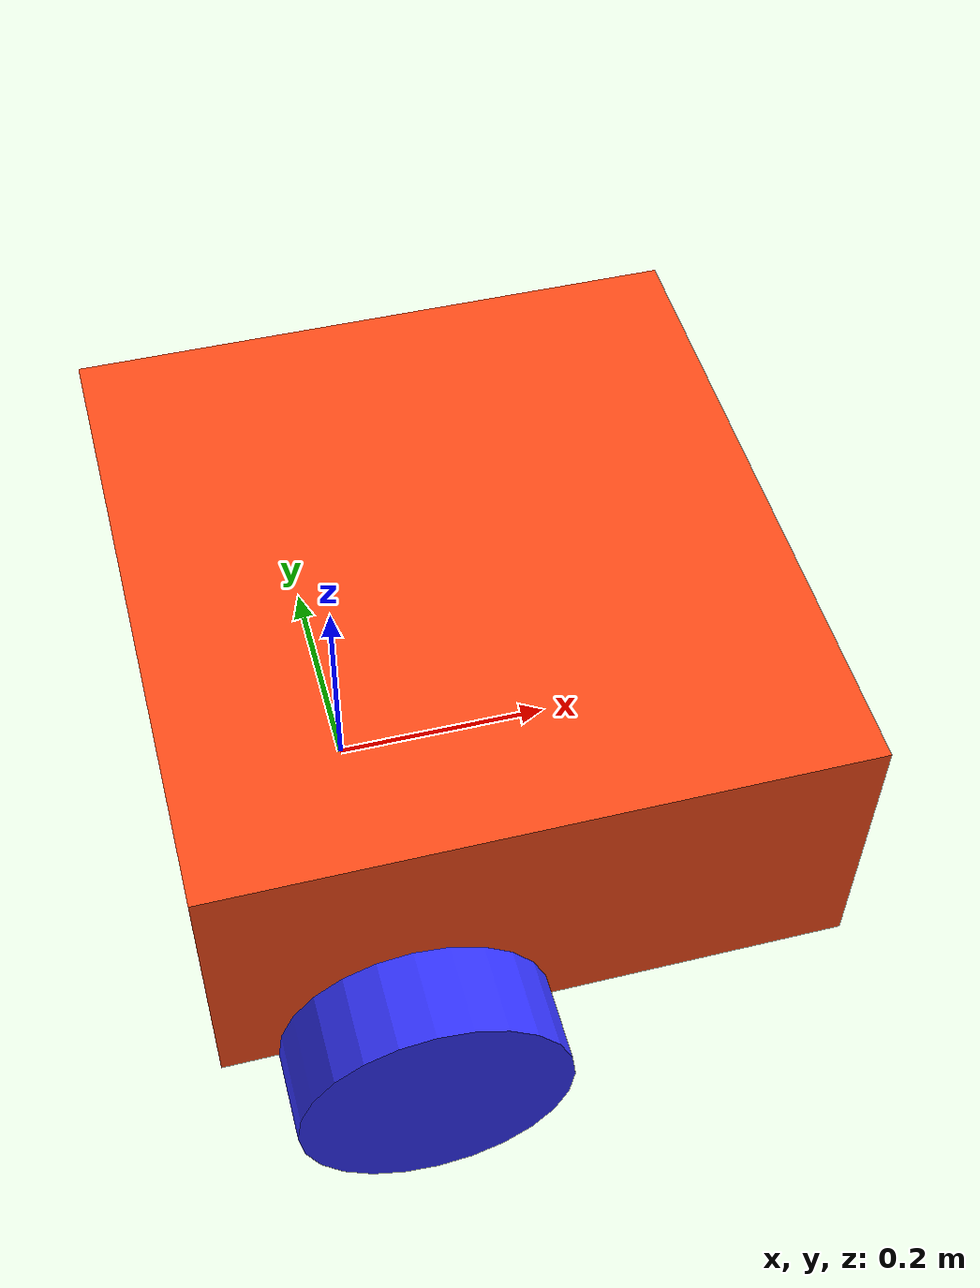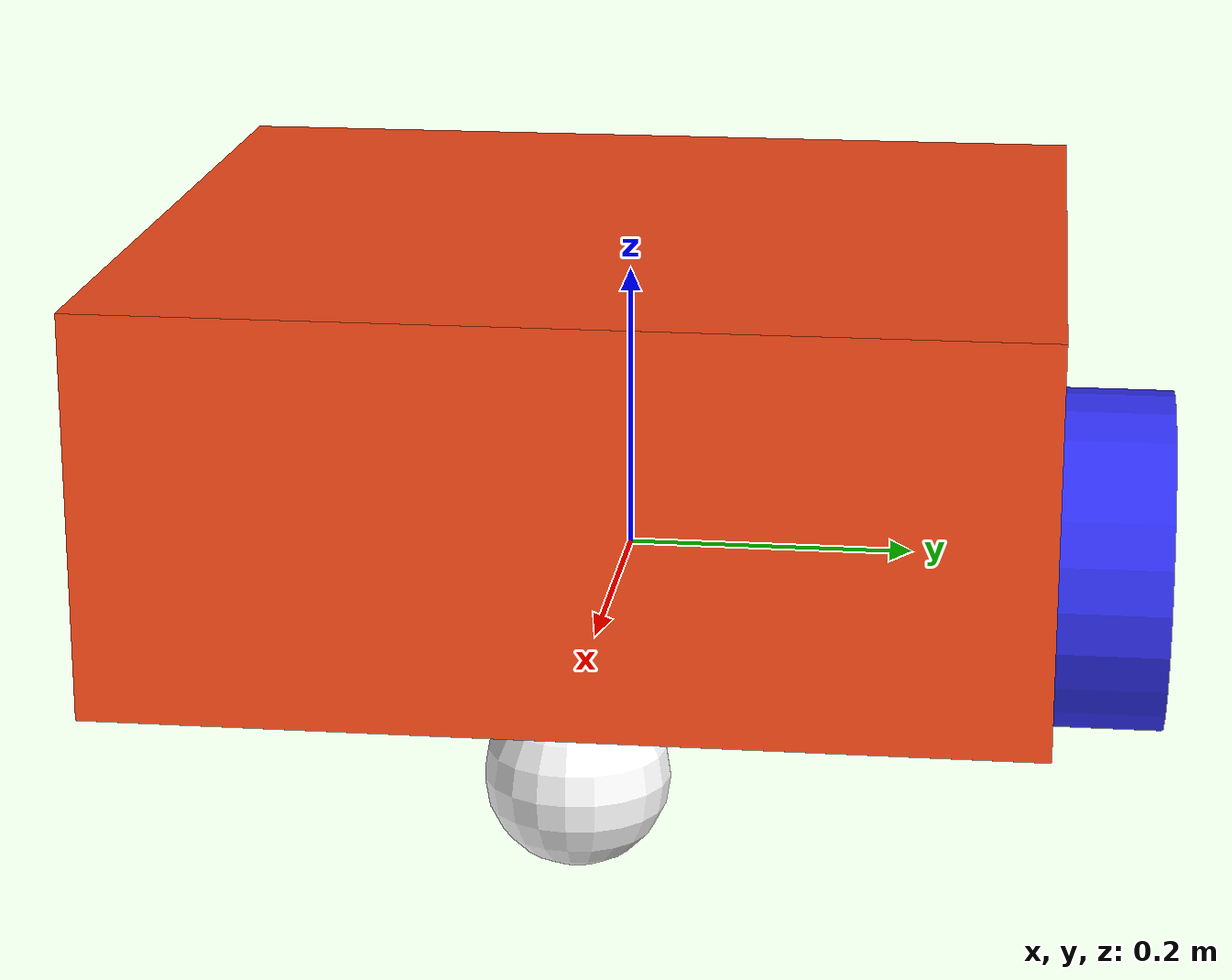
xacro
<?xml version="1.0"?>
<robot xmlns:xacro="http://www.ros.org/wiki/xacro"  name="robot">
<!-- This file has all the components of the body listed.  -->

    <xacro:include filename="robot_core.xacro" />
    <xacro:include filename="ros2_control.xacro" />
    <xacro:include filename="lidar.xacro" />

</robot>

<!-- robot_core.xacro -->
<robot xmlns:xacro="http://www.ros.org/wiki/xacro">
<!-- This will contain the core structure defined.  -->

    <xacro:include filename="inertial_macros.xacro"/>
    <xacro:include filename="properties.xacro"/>
    <xacro:include filename="material.xacro"/>

    <link name="base_link"></link>

    <link name="base_footprint"></link>

    <!-- BASE_FOOTPRINT LINK -->
    <joint name="base_footprint_joint" type="fixed">
        <parent link="base_link"/>
        <child link="base_footprint"/>
        <origin xyz="0 0 0"/>
    </joint>

    <!-- CHASSIS LINK -->
    <joint name="chassis_joint" type="fixed">
        <parent link="base_link"/>
        <child link="chassis"/>
        <origin xyz="${-wheel_offset_x} 0 0"/>
    </joint>

    <link name="chassis">
        <visual>
            <origin xyz="${chassis_length/2} 0 ${chassis_height/2}"/>
            <geometry>
                <box size="${chassis_length} ${chassis_width} ${chassis_height}"/>
            </geometry>
            <material name="orange"/>
        </visual>
        <collision>
            <origin xyz="${chassis_length/2} 0 ${chassis_height/2}"/>
            <geometry>
                <box size="${chassis_length} ${chassis_width} ${chassis_height}"/>
            </geometry>
        </collision>
        <xacro:inertial_box mass="0.5" x="${chassis_length}" y="${chassis_width}" z="${chassis_height}">
            <origin xyz="${chassis_length/2} 0 ${chassis_height/2}" rpy="0 0 0"/>
        </xacro:inertial_box>
    </link>

 <!-- RIGHT WHEEL LINK -->
    <joint name="right_wheel_joint" type="continuous">
        <parent link="base_link"/>
        <child link="right_wheel"/>
        <origin xyz="0 ${-wheel_offset_y} 0" rpy="${pi/2} 0 0" />
        <axis xyz="0 0 -1"/>
    </joint>

    <link name="right_wheel">
        <visual>
            <geometry>
                <cylinder radius="${wheel_radius}" length="${wheel_thickness}"/>
            </geometry>
            <material name="blue"/>
        </visual>
        <collision>
            <geometry>
                <sphere radius="${wheel_radius}"/>
            </geometry>
        </collision>
        <xacro:inertial_cylinder mass="${wheel_mass}" length="${wheel_thickness}" radius="${wheel_radius}">
            <origin xyz="0 0 0" rpy="0 0 0"/>
        </xacro:inertial_cylinder>
    </link>

    <!-- LEFT WHEEL LINK -->
    <joint name="left_wheel_joint" type="continuous">
        <parent link="base_link"/>
        <child link="left_wheel"/>
        <origin xyz="0 ${wheel_offset_y} 0" rpy="-${pi/2} 0 0" />
        <axis xyz="0 0 1"/>
    </joint>

    <link name="left_wheel">
        <visual>
            <geometry>
                <cylinder radius="${wheel_radius}" length="${wheel_thickness}"/>
            </geometry>
            <material name="blue"/>
        </visual>
        <collision>
            <geometry>
                <sphere radius="${wheel_radius}"/>
            </geometry>
        </collision>
        <xacro:inertial_cylinder mass="${wheel_mass}" length="${wheel_thickness}" radius="${wheel_radius}">
            <origin xyz="0 0 0" rpy="0 0 0"/>
        </xacro:inertial_cylinder>
    </link>

<!-- CASTER WHEEL -->
    <joint name="caster_wheel_joint" type="fixed">
        <parent link="base_link"/>
        <child link="caster_wheel"/>
        <origin xyz="${caster_wheel_offset_x} ${caster_wheel_offset_y} -${caster_wheel_offset_z}"/>
    </joint>

    <link name="caster_wheel">
        <visual>
            <geometry>
                <sphere radius="${caster_wheel_radius}"/>
            </geometry>
            <material name="white"/>
        </visual>
        <collision>
            <geometry>
                <sphere radius="${caster_wheel_radius}"/>
            </geometry>
        </collision>
        <xacro:inertial_sphere mass="${caster_wheel_mass}" radius="${caster_wheel_radius}">
            <origin xyz="0 0 0" rpy="0 0 0"/>
        </xacro:inertial_sphere>
    </link>

</robot>

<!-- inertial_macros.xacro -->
<robot xmlns:xacro="http://www.ros.org/wiki/xacro" >
<!-- These make use of xacro's mathematical functionality -->

    <!-- Specify some standard inertial calculations https://en.wikipedia.org/wiki/List_of_moments_of_inertia -->

    <xacro:macro name="inertial_sphere" params="mass radius *origin">
        <inertial>
            <xacro:insert_block name="origin"/>
            <mass value="${mass}" />
            <inertia ixx="${(2/5) * mass * (radius*radius)}" ixy="0.0" ixz="0.0"
                    iyy="${(2/5) * mass * (radius*radius)}" iyz="0.0"
                    izz="${(2/5) * mass * (radius*radius)}" />
        </inertial>
    </xacro:macro>

    <xacro:macro name="inertial_box" params="mass x y z *origin">
        <inertial>
            <xacro:insert_block name="origin"/>
            <mass value="${mass}" />
            <inertia ixx="${(1/12) * mass * (y*y+z*z)}" ixy="0.0" ixz="0.0"
                    iyy="${(1/12) * mass * (x*x+z*z)}" iyz="0.0"
                    izz="${(1/12) * mass * (x*x+y*y)}" />
        </inertial>
    </xacro:macro>

    <xacro:macro name="inertial_cylinder" params="mass length radius *origin">
        <inertial>
            <xacro:insert_block name="origin"/>
            <mass value="${mass}" />
            <inertia ixx="${(1/12) * mass * (3*radius*radius + length*length)}" ixy="0.0" ixz="0.0"
                    iyy="${(1/12) * mass * (3*radius*radius + length*length)}" iyz="0.0"
                    izz="${(1/2) * mass * (radius*radius)}" />
        </inertial>
    </xacro:macro>

</robot>

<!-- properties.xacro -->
<robot xmlns:xacro="http://www.ros.org/wiki/xacro">
<!-- contains all the properties of the bot, one stop shop to change all dimentions  -->

    <xacro:property name="chassis_length" value="0.560"/>
    <xacro:property name="chassis_width" value="0.600"/>
    <xacro:property name="chassis_height" value="0.260"/>

    <xacro:property name="chassis_mass" value="1.0"/>

    <xacro:property name="wheel_radius" value="0.12"/>
    <xacro:property name="wheel_thickness" value="0.08"/>
    <xacro:property name="wheel_mass" value="2.0"/>

    <xacro:property name="wheel_offset_x" value="0.170"/>
    <xacro:property name="wheel_offset_y" value="0.340"/>
    <xacro:property name="wheel_offset_z" value="0"/>

    <xacro:property name="caster_wheel_radius" value="0.06"/>
    <xacro:property name="caster_wheel_mass" value="0.01"/>

    <xacro:property name="caster_wheel_offset_x" value="0.290"/>
    <xacro:property name="caster_wheel_offset_y" value="0"/>
    <xacro:property name="caster_wheel_offset_z" value="0.06"/>

</robot>

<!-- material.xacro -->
<robot xmlns:xacro="http://www.ros.org/wiki/xacro">
<!-- contains all the materials used for the bot  -->

    <material name="white">
        <color rgba="1 1 1 1" />
    </material>

    <material name="orange">
        <color rgba="1 0.3 0.1 1"/>
    </material>

    <material name="blue">
        <color rgba="0.2 0.2 1 1"/>
    </material>

    <material name="black">
        <color rgba="0 0 0 1"/>
    </material>

    <material name="red">
        <color rgba="1 0 0 1"/>
    </material>

</robot>

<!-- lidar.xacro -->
<robot xmlns:xacro="http://www.ros.org/wiki/xacro">
<!-- Creating lidar on urdf and linking the gazebo plugin to make it work -->

  <joint name="laser_joint" type="fixed">
     <parent link="chassis"/>
     <child link="laser_frame"/>
     <origin xyz="0.420 0 0.200" rpy="0 0 0"/>
   </joint>
   <link name="laser_frame">
      <visual>
         <origin xyz="0 0 0.02"/>
         <geometry>
            <cylinder length="0.04" radius="0.05"/>
         </geometry>
         <material name="laser_material">
            <color rgba="0.13 0.13 0.13 1.0"/>
         </material>
      </visual>
      <collision>
         <origin xyz="0 0 0"/>
         <geometry>
            <cylinder length="0.04" radius="0.05"/>
         </geometry>
      </collision>
      <xacro:inertial_cylinder mass="0.1" length="0.04" radius="0.05">
         <origin xyz="0 0 0" rpy="0 0 0"/>
      </xacro:inertial_cylinder>
   </link>

</robot>
